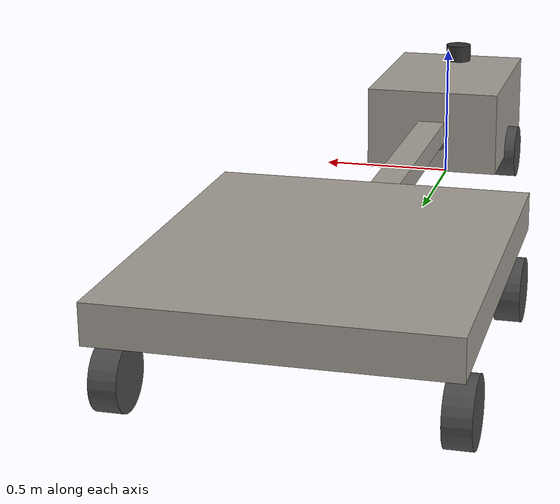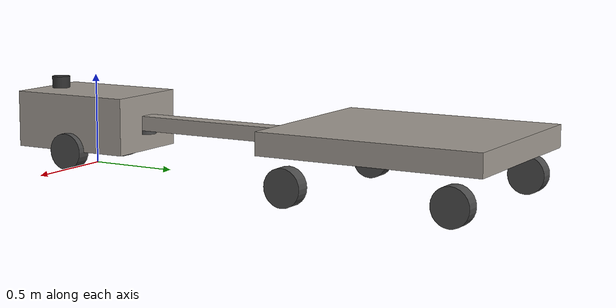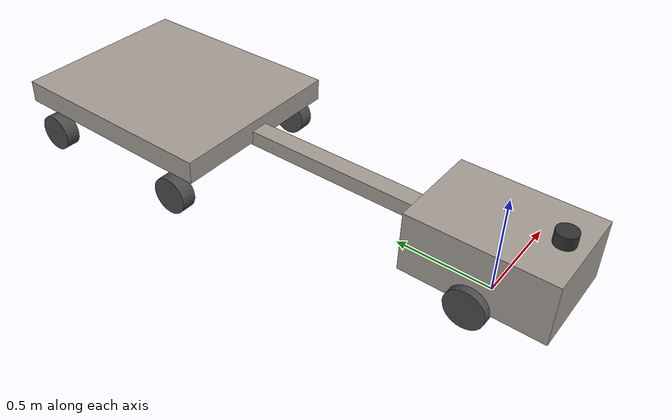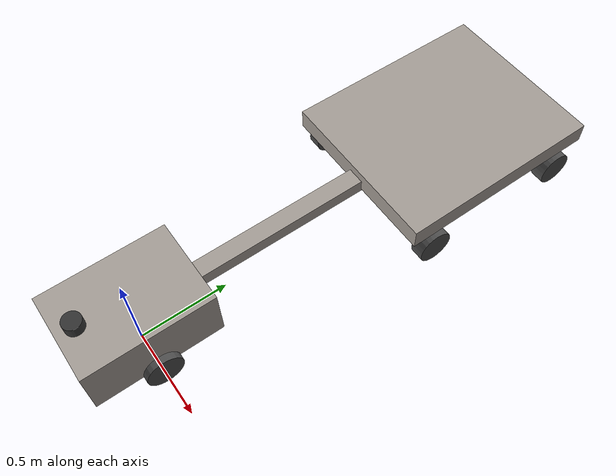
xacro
<?xml version="1.0" encoding="utf-8"?>
<robot name="glr_description" xmlns:xacro="http://ros.org/wiki/xacro">

  <!-- Wheel properties -->
  <xacro:property name="wheel_radius" value="0.1" />
  <xacro:property name="wheel_width" value="0.08" />
  <xacro:property name="caster_radius" value="0.08" />
  <xacro:property name="trailer_wheel_radius" value="0.1" />
  <xacro:property name="trailer_wheel_width" value="0.08" />

  <!-- Define intertial property macros  -->
  <xacro:macro name="box_inertia" params="m w d h">
    <inertia ixx="${1*(m/12) * (h*h + d*d)}" ixy="0.0" ixz="0.0" iyy="${1*(m/12) * (w*w + d*d)}" iyz="0.0" izz="${1*(m/12) * (w*w + h*h)}"/>
  </xacro:macro>

  <xacro:macro name="sphere_inertia" params="m r">
    <inertia ixx="${1*(2/5) * m * (r*r)}" ixy="0.0" ixz="0.0" iyy="${1*(2/5) * m * (r*r)}" iyz="0.0" izz="${1*(2/5) * m * (r*r)}"/>
  </xacro:macro>

  <xacro:macro name="cylinder_inertia" params="m r h">
    <inertial>
      <mass value="${m}"/>
      <inertia  ixx="${m*(3*r*r+h*h)/12}" ixy = "0" ixz = "0" iyy="${m*(3*r*r+h*h)/12}" iyz = "0" izz="${m*r*r/2}" />
    </inertial>
  </xacro:macro>

  <!--Robot description  -->
  <link name="base_link"/>

  <!-- Robot Footprint -->
  <link name="base_footprint"/>

  <joint name="base_joint" type="fixed">
    <parent link="base_link"/>
    <child link="base_footprint"/>
    <origin xyz="0 0 0" rpy="0 0 0"/>
  </joint>

  <!-- Tugger -->
  <link name="chassibigga">
    <origin xyz="0 0 0" rpy="0 0 0" />
    <inertial>
      <origin xyz="0 0 0.155" rpy="0 0 0" />
      <mass value="555.02" />
      <xacro:box_inertia m="555.02" w="0.5" d="0.7" h="0.31"/>
    </inertial>
    <visual>
      <origin xyz="0 0 0.155" rpy="0 0 0" />
      <geometry>
          <box size="0.50 0.70 0.31"/>
      </geometry>
      <material name="">
        <color rgba="0.64706 0.61961 0.58824 1" />
      </material>
    </visual>
    <collision>
      <origin xyz="0 0 0.155" rpy="0 0 0" />
      <geometry>
          <box size="0.50 0.70 0.31"/>
      </geometry>
    </collision>
  </link>

  <joint name="base_chassi_joint" type="fixed">
    <parent link="base_link"/>
    <child link="chassibigga"/>
    <origin xyz="0 0 ${wheel_radius}" rpy="0 0 0"/>
  </joint>

  <!-- Left Traction Wheel -->
  <link name="left_wheel">
    <inertial>
      <origin xyz="0 0 0" rpy="0 0 0"/>
      <mass value="12"/>
      <xacro:sphere_inertia m="12" r="${wheel_radius}"/>
    </inertial>
    <visual>
      <origin xyz="0 0 0" rpy="0 1.5708 0"/>
      <geometry>
        <cylinder radius="${wheel_radius}" length="${wheel_width}"/>
      </geometry>
      <material name="wheel_material">
        <color rgba="0.29804 0.29804 0.29804 1"/>
      </material>
    </visual>
    <collision>
      <origin xyz="0 0 0" rpy="0 1.5708 0"/>
      <geometry>
        <cylinder radius="${wheel_radius}" length="${wheel_width}"/>
      </geometry>
    </collision>
  </link>

  <joint name="left_wheel_joint" type="continuous">
    <origin xyz="0.25 0 0" rpy="0 0 0"/>
    <parent link="chassibigga"/>
    <child link="left_wheel"/>
    <axis xyz="1 0 0"/>
    <dynamics damping="0.1" friction="0.1"/>
  </joint>

  <!-- Right Traction Wheel -->
  <link name="right_wheel">
    <inertial>
      <origin xyz="0 0 0" rpy="0 0 0"/>
      <mass value="12"/>
      <xacro:sphere_inertia m="12" r="${wheel_radius}"/>
    </inertial>
    <visual>
      <origin xyz="0 0 0" rpy="0 1.5708 0"/>
      <geometry>
        <cylinder radius="${wheel_radius}" length="${wheel_width}"/>
      </geometry>
      <material name="wheel_material">
        <color rgba="0.29804 0.29804 0.29804 1"/>
      </material>
    </visual>
    <collision>
      <origin xyz="0 0 0" rpy="0 1.5708 0"/>
      <geometry>
        <cylinder radius="${wheel_radius}" length="${wheel_width}"/>
      </geometry>
    </collision>
  </link>

  <joint name="right_wheel_joint" type="continuous">
    <origin xyz="-0.25 0 0" rpy="0 0 0"/>
    <parent link="chassibigga"/>
    <child link="right_wheel"/>
    <axis xyz="1 0 0"/>
    <dynamics damping="0.1" friction="0.1"/>
  </joint>

  <!-- CASTER WHEELS COMMENTED FOR TESTING -->
  <!--
  Front/Back Left/Right Caster wheels commented out for testing
  -->

  <!-- TUGGER-TRAILER CONNECTION -->

  <!-- Hitch point at the back of tugger -->
  <link name="hitch_link">
    <inertial>
      <origin xyz="0 0 0" rpy="0 0 0"/>
      <mass value="1.0"/>
      <inertia ixx="0.01" ixy="0" ixz="0" iyy="0.01" iyz="0" izz="0.01"/>
    </inertial>
    <visual>
      <origin xyz="0 0 0" rpy="0 0 0"/>
      <geometry>
        <cylinder radius="0.05" length="0.1"/>
      </geometry>
      <material name="hitch_material">
        <color rgba="0.3 0.3 0.3 1"/>
      </material>
    </visual>
    <collision>
      <origin xyz="0 0 0" rpy="0 0 0"/>
      <geometry>
        <cylinder radius="0.05" length="0.1"/>
      </geometry>
    </collision>
  </link>

  <joint name="hitch_joint" type="fixed">
    <origin xyz="0 0.35 0.14260" rpy="0 0 0"/>
    <parent link="chassibigga"/>
    <child link="hitch_link"/>
  </joint>

  <joint name="eixochassibigga" type="revolute">
    <origin xyz="0 0 0" rpy="0 0 0" />
    <parent link="hitch_link" />
    <child link="chassibigga_uni" />
    <axis xyz="0 0 1" />
    <limit lower="-0.6" upper="0.6" effort="100" velocity="1" />
    <dynamics damping="0" friction="0" />
  </joint>

  <link name="chassibigga_uni">
    <inertial>
      <origin rpy="0 0 0" xyz="0.003381 1.5929e-07 0.02162" />
      <mass value="0.5" />
      <inertia ixx="1.0" ixy="0.0" ixz="0.0" iyy="1.0" iyz="0.0" izz="1.0" />
    </inertial>
  </link>

  <joint name="eixochassibigga_cambao" type="revolute">
    <origin xyz="0 1.1578 0.0112477" rpy="0 0 0" />
    <parent link="chassibigga_uni" />
    <child link="cambao" />
    <axis xyz="0 1 0" />
    <limit lower="-0.6" upper="0.6" effort="100" velocity="1" />
    <dynamics damping="0" friction="0" />
  </joint>

  <!-- Connector -->
  <link name="cambao">
    <inertial>
      <origin xyz="-0.0010213 -0.38489 0.0092469" rpy="0 0 0" />
      <mass value="1." />
      <inertia ixx="0.12" ixy="0.0" ixz="0.0" iyy="0.12" iyz="0.0" izz="0.12" />
    </inertial>
    <visual>
      <origin xyz="0 -0.7 0" rpy="0 0 0" />
     <geometry>
        <box size="0.1 1.2 0.08"/>
      </geometry>
      <material name="">
        <color rgba="0.64706 0.61961 0.58824 1" />
      </material>
    </visual>
  </link>

  <joint name="eixocambao_chassi" type="revolute">
    <origin xyz="0 0.445 -0.31525" rpy="0 0 0" />
    <parent link="cambao" />
    <child link="chassi" />
    <axis xyz="0 0 1" />
    <limit lower="-0.4" upper="0.4" effort="100" velocity="1" />
    <dynamics damping="0" friction="0" />
  </joint>

  <!-- Trailer -->
  <link name="chassi">
    <inertial>
      <mass value="80.702" />
      <xacro:box_inertia m="80.702" w="1" d="1.2" h="0.12"/>
    </inertial>
    <visual>
      <origin xyz="0 0 0.35" rpy="0 0 0" />
     <geometry>
        <box size="1 1.2 0.12"/>
      </geometry>
      <material name="Cyan">
        <color rgba="0.64706 0.61961 0.58824 1" />
      </material>
    </visual>
    <collision>
      <origin xyz="0 0 0.43" rpy="0 0 0" />
      <geometry>
        <box size="1 1.2 0.12"/>
      </geometry>
    </collision>
  </link>

  <!-- Trailer wheel mounts -->
  <link name="rodeirodiant1">
    <inertial>
      <origin xyz="-0.010304 0.018687 -0.067271" rpy="0 0 0" />
      <mass value="0.5" />
      <inertia ixx="0.11" ixy="0.0" ixz="0.0" iyy="0.11" iyz="0.0" izz="0.11" />
    </inertial>
  </link>

  <joint name="eixorodeirodiant1" type="revolute">
    <origin xyz="0.39 -0.445 0.36525" rpy="0 0 0" />
    <parent link="chassi" />
    <child link="rodeirodiant1" />
    <axis xyz="0 0 1" />
    <limit lower="-1" upper="1" effort="100" velocity="1" />
    <dynamics damping="0" friction="10.0" />
  </joint>

  <link name="rodadiant1">
    <inertial>
      <origin xyz="0 0 0" rpy="0 0 0" />
      <mass value="2" />
      <xacro:sphere_inertia m="2" r="${trailer_wheel_radius}"/>
    </inertial>
    <visual>
      <origin xyz="0 0 0" rpy="0 1.5708 0" />
      <geometry>
        <cylinder radius="${trailer_wheel_radius}" length="${trailer_wheel_width}"/>
      </geometry>
      <material name="">
        <color rgba="0.29804 0.29804 0.29804 1" />
      </material>
    </visual>
    <collision>
      <origin xyz="0 0 0" rpy="0 1.5708 0" />
      <geometry>
        <cylinder radius="${trailer_wheel_radius}" length="${trailer_wheel_width}"/>
      </geometry>
    </collision>
  </link>

  <joint name="eixorodadiant1" type="continuous">
    <origin xyz="0.08 0 -0.22125" rpy="0 0 0" />
    <parent link="rodeirodiant1" />
    <child link="rodadiant1" />
    <axis xyz="1 0 0" />
    <dynamics damping="0" friction="10.0" />
  </joint>

  <link name="rodeirodiant2">
    <inertial>
      <origin xyz="0.010304 0.018687 -0.067271" rpy="0 0 0" />
      <mass value="0.5" />
      <inertia ixx="0.011" ixy="0.0" ixz="0.0" iyy="0.011" iyz="0.0" izz="0.11" />
    </inertial>
  </link>

  <joint name="eixorodeirodiant2" type="revolute">
    <origin xyz="-0.39 -0.445 0.36525" rpy="0 0 0" />
    <parent link="chassi" />
    <child link="rodeirodiant2" />
    <axis xyz="0 0 1" />
    <limit lower="-0.7" upper="0.7" effort="100" velocity="1" />
    <dynamics damping="0" friction="1.0" />
  </joint>

  <link name="rodadiant2">
    <inertial>
      <origin xyz="0 0 0" rpy="0 0 0" />
      <mass value="2" />
      <xacro:sphere_inertia m="2" r="${trailer_wheel_radius}"/>
    </inertial>
    <visual>
      <origin xyz="0 0 0" rpy="0 1.5708 0" />
      <geometry>
        <cylinder radius="${trailer_wheel_radius}" length="${trailer_wheel_width}"/>
      </geometry>
      <material name="">
        <color rgba="0.29804 0.29804 0.29804 1" />
      </material>
    </visual>
    <collision>
      <origin xyz="0 0 0" rpy="0 1.5708 0" />
      <geometry>
        <cylinder radius="${trailer_wheel_radius}" length="${trailer_wheel_width}"/>
      </geometry>
    </collision>
  </link>

  <joint name="eixorodadiant2" type="continuous">
    <origin xyz="-0.08 0 -0.22125" rpy="0 0 0" />
    <parent link="rodeirodiant2" />
    <child link="rodadiant2" />
    <axis xyz="1 0 0" />
    <dynamics damping="0" friction="10.0" />
  </joint>

  <link name="rodeirotras1">
    <inertial>
      <origin xyz="-0.014075 -2.2041E-06 -0.076225" rpy="0 0 0" />
      <mass value="0.5" />
      <inertia ixx="0.11" ixy="0.0" ixz="0.0" iyy="0.11" iyz="0.0" izz="0.11" />
    </inertial>
  </link>

  <joint name="eixorodeirotras1" type="revolute">
    <origin xyz="0.39 0.445 0.36525" rpy="0 0 0" />
    <parent link="chassi" />
    <child link="rodeirotras1" />
    <axis xyz="0 0 1" />
    <limit lower="-1" upper="1" effort="100" velocity="1" />
    <dynamics damping="0" friction="10.0" />
  </joint>

  <link name="rodatras1">
    <inertial>
      <origin xyz="0 0 0" rpy="0 0 0" />
      <mass value="2" />
      <xacro:sphere_inertia m="2" r="${trailer_wheel_radius}"/>
    </inertial>
    <visual>
      <origin xyz="0 0 0" rpy="0 1.5708 0" />
      <geometry>
        <cylinder radius="${trailer_wheel_radius}" length="${trailer_wheel_width}"/>
      </geometry>
      <material name="">
        <color rgba="0.29804 0.29804 0.29804 1" />
      </material>
    </visual>
    <collision>
      <origin xyz="0 0 0" rpy="0 1.5708 0" />
      <geometry>
        <cylinder radius="${trailer_wheel_radius}" length="${trailer_wheel_width}"/>
      </geometry>
    </collision>
  </link>

  <joint name="eixorodatras1" type="continuous">
    <origin xyz="0.080 0 -0.22125" rpy="0 0 0" />
    <parent link="rodeirotras1" />
    <child link="rodatras1" />
    <axis xyz="1 0 0" />
    <dynamics damping="0" friction="10.0" />
  </joint>

  <link name="rodeirotras2">
    <inertial>
      <origin xyz="0.014075 -2.2041E-06 -0.076225" rpy="0 0 0" />
      <mass value="0.5" />
      <inertia ixx="0.11" ixy="0.0" ixz="0.0" iyy="0.11" iyz="0.0" izz="0.11" />
    </inertial>
  </link>

  <joint name="eixorodeirotras2" type="revolute">
    <origin xyz="-0.39 0.445 0.36525" rpy="0 0 0" />
    <parent link="chassi" />
    <child link="rodeirotras2" />
    <axis xyz="0 0 1" />
    <limit lower="-1" upper="1" effort="100" velocity="1" />
    <dynamics damping="0" friction="10.0" />
  </joint>

  <link name="rodatras2">
    <inertial>
      <origin xyz="0 0 0" rpy="0 0 0" />
      <mass value="2" />
      <xacro:sphere_inertia m="2" r="${trailer_wheel_radius}"/>
    </inertial>
    <visual>
      <origin xyz="0 0 0" rpy="0 1.5708 0" />
      <geometry>
        <cylinder radius="${trailer_wheel_radius}" length="${trailer_wheel_width}"/>
      </geometry>
      <material name="">
        <color rgba="0.29804 0.29804 0.29804 1" />
      </material>
    </visual>
    <collision>
      <origin xyz="0 0 0" rpy="0 1.5708 0" />
      <geometry>
        <cylinder radius="${trailer_wheel_radius}" length="${trailer_wheel_width}"/>
      </geometry>
    </collision>
  </link>

  <joint name="eixorodatras2" type="continuous">
    <origin xyz="-0.080 0 -0.22125" rpy="0 0 0" />
    <parent link="rodeirotras2" />
    <child link="rodatras2" />
    <axis xyz="1 0 0" />
    <dynamics damping="0" friction="10.0" />
  </joint>

  <!-- Generic LiDAR -->
  <link name="lidar_link">
    <inertial>
      <origin xyz="0 0 0" rpy="0 0 0"/>
      <mass value="0.5"/>
      <inertia ixx="0.001" ixy="0" ixz="0" iyy="0.001" iyz="0" izz="0.001"/>
    </inertial>
    <visual>
      <origin xyz="0 0 0" rpy="0 0 0"/>
      <geometry>
        <cylinder radius="0.05" length="0.07"/>
      </geometry>
      <material name="lidar_material">
        <color rgba="0.2 0.2 0.2 1"/>
      </material>
    </visual>
    <collision>
      <origin xyz="0 0 0" rpy="0 0 0"/>
      <geometry>
        <cylinder radius="0.05" length="0.07"/>
      </geometry>
    </collision>
  </link>

  <joint name="lidar_joint" type="fixed">
    <parent link="chassibigga"/>
    <child link="lidar_link"/>
    <origin xyz="0 -0.25 0.34" rpy="0 0 0"/>
  </joint>

</robot>
